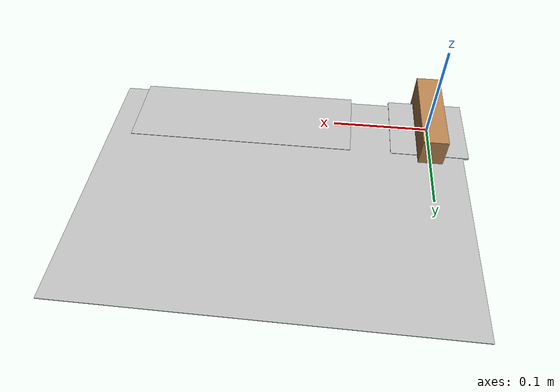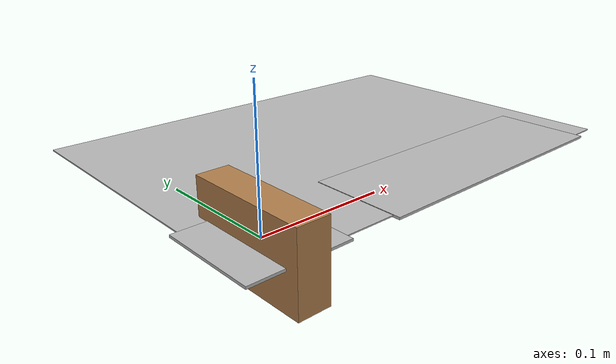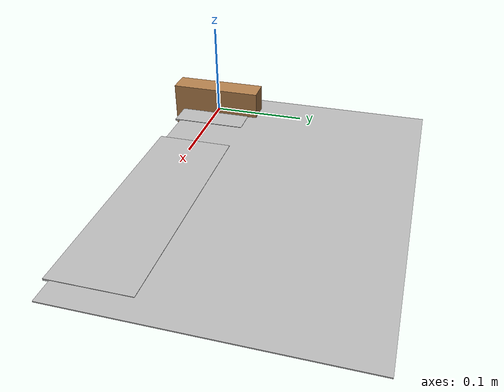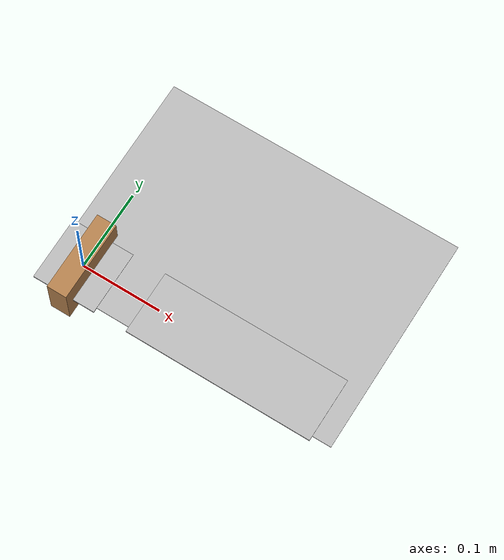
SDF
<sdf version='1.6'>
	<world name='default'>
		<model name="inspection_marker">
			<static>1</static>
			<pose>0 0 0 0 0 1.5707</pose>
			<link name="inspection_marker_link">
				<visual name="visual">
					<transparency>0.05</transparency>
					<cast_shadows>false</cast_shadows>
					<geometry>
						<box>
							<size>0.08 0.08 0.002</size>
						</box>
					</geometry>
					<material>
						<script>
							<uri>model://inspection_marker/materials/scripts</uri>
							<uri>model://inspection_marker/materials/textures</uri>
							<name>inspection_marker</name>
						</script>
					</material>
				</visual>
				<gravity>0</gravity>
			</link>
		</model>

		<model name="inspection_message">
			<static>true</static>
			<pose>0.2 0 0 0 0 1.5707</pose>
			<link name="inspection_message_link">
				<visual name="visual">
					<transparency>0.05</transparency>
					<cast_shadows>false</cast_shadows>
					<geometry>
						<box>
							<size>0.08 0.236 0.002</size>
						</box>
					</geometry>
					<material>
						<script>
							<uri>model://inspection_message/materials/scripts</uri>
							<uri>model://inspection_message/materials/textures</uri>
							<name>inspection_message</name>
						</script>
					</material>
				</visual>
			</link>
		</model>

		<model name="inspection_marker2">
			<static>1</static>
			<pose>0 0 0 0 0 1.5707</pose>
			<link name="inspection_marker2_link">
				<visual name="visual">
					<transparency>1</transparency>
					<cast_shadows>false</cast_shadows>
					<geometry>
						<box>
							<size>0.08 0.08 0.002</size>
						</box>
					</geometry>
					<material>
						<script>
							<uri>model://inspection_marker/materials/scripts</uri>
							<uri>model://inspection_marker/materials/textures</uri>
							<name>inspection_marker</name>
						</script>
					</material>
				</visual>
				<gravity>0</gravity>
			</link>
		</model>

		<model name="inspection_message2">
			<static>true</static>
			<pose>0.2 0 0 0 0 1.5707</pose>
			<link name="inspection_message2_link">
				<visual name="visual">
					<transparency>1</transparency>
					<cast_shadows>false</cast_shadows>
					<geometry>
						<box>
							<size>0.08 0.236 0.002</size>
						</box>
					</geometry>
					<material>
						<script>
							<uri>model://inspection_message/materials/scripts</uri>
							<uri>model://inspection_message/materials/textures</uri>
							<name>inspection_message</name>
						</script>
					</material>
				</visual>
			</link>
		</model>

		<model name="calibration_pattern">
			<static>1</static>
			<pose>0.153675 0.10245 0 0 0 0</pose>
			<link name="calibration_pattern_link">
				<visual name="visual">
					<transparency>0</transparency>
					<cast_shadows>false</cast_shadows>
					<geometry>
						<box>
							<size>0.37565 0.2732 0.001</size>
						</box>
					</geometry>
					<material>
						<script>
							<uri>model://calibration_pattern/materials/scripts</uri>
							<uri>model://calibration_pattern/materials/textures</uri>
							<name>calibration_pattern</name>
						</script>
					</material>
				</visual>
				<gravity>0</gravity>
			</link>
		</model>

		<model name='camera_projection_mapping'>
			<static>1</static>
			<link name='projector_link'>
				<visual name='projector_link_visual'>
					<geometry>
						<box>
							<size>0.025 0.1 0.06</size>
						</box>
					</geometry>
					<material>
						<script>
							<name>Gazebo/Wood</name>
							<uri>__default__</uri>
						</script>
					</material>
				</visual>
				<gravity>0</gravity>
				<self_collide>0</self_collide>
				<sensor name='virtual_camera' type='camera'>
					<camera name='projector_head'>
						<horizontal_fov>1.15</horizontal_fov>
						<image>
							<width>1280</width>
							<height>800</height>
							<format>R8G8B8</format>
						</image>
						<clip>
							<near>0.1</near>
							<far>10.0</far>
						</clip>
						<noise>
							<type>gaussian</type>
							<mean>0</mean>
							<stddev>0</stddev>
						</noise>
						<lens>
							<intrinsics>
								<fx>1830</fx>
								<fy>1840</fy>
								<cx>640</cx>
								<cy>15</cy>
								<s>0</s>
							</intrinsics>
						</lens>
					</camera>
					<visualize>0</visualize>
					<plugin name='camera_controller' filename='libgazebo_ros_camera.so'>
						<alwaysOn>true</alwaysOn>
						<updateRate>1</updateRate>
						<cameraName>virtual_camera</cameraName>
						<imageTopicName>image_raw</imageTopicName>
						<cameraInfoTopicName>camera_info</cameraInfoTopicName>
						<frameName>camera_link</frameName>

						<focalLengthX>1830</focalLengthX>
						<focalLengthY>1840</focalLengthY>
						<hackBaseline>0</hackBaseline>
						<CxPrime>640</CxPrime>
						<Cx>640</Cx>
						<Cy>15</Cy>

						<distortionK1>0</distortionK1>
						<distortionK2>0</distortionK2>
						<distortionT1>0</distortionT1>
						<distortionT2>0</distortionT2>
						<distortionK3>0</distortionK3>

						<robotNamespace>/</robotNamespace>
					</plugin>
				</sensor>
			</link>
			<static>1</static>
		</model>

		<physics type='ode'>
			<max_step_size>0.1</max_step_size>
			<real_time_factor>1</real_time_factor>
			<real_time_update_rate>10</real_time_update_rate>
			<max_contacts>0</max_contacts>
			<ode>
				<solver>
					<type>quick</type>
					<min_step_size>0.1</min_step_size>
					<iters>1</iters>
				</solver>
			</ode>
		</physics>

		<scene>
			<ambient>1 1 1 1</ambient>
			<background>0 0 0 1</background>
			<shadows>1</shadows>
		</scene>

		<gui fullscreen='0'>
			<camera name='user_camera'>
				<pose>0 0 1 0 1.5707 0</pose>
				<view_controller>orbit</view_controller>
			</camera>
		</gui>
	</world>
</sdf>
